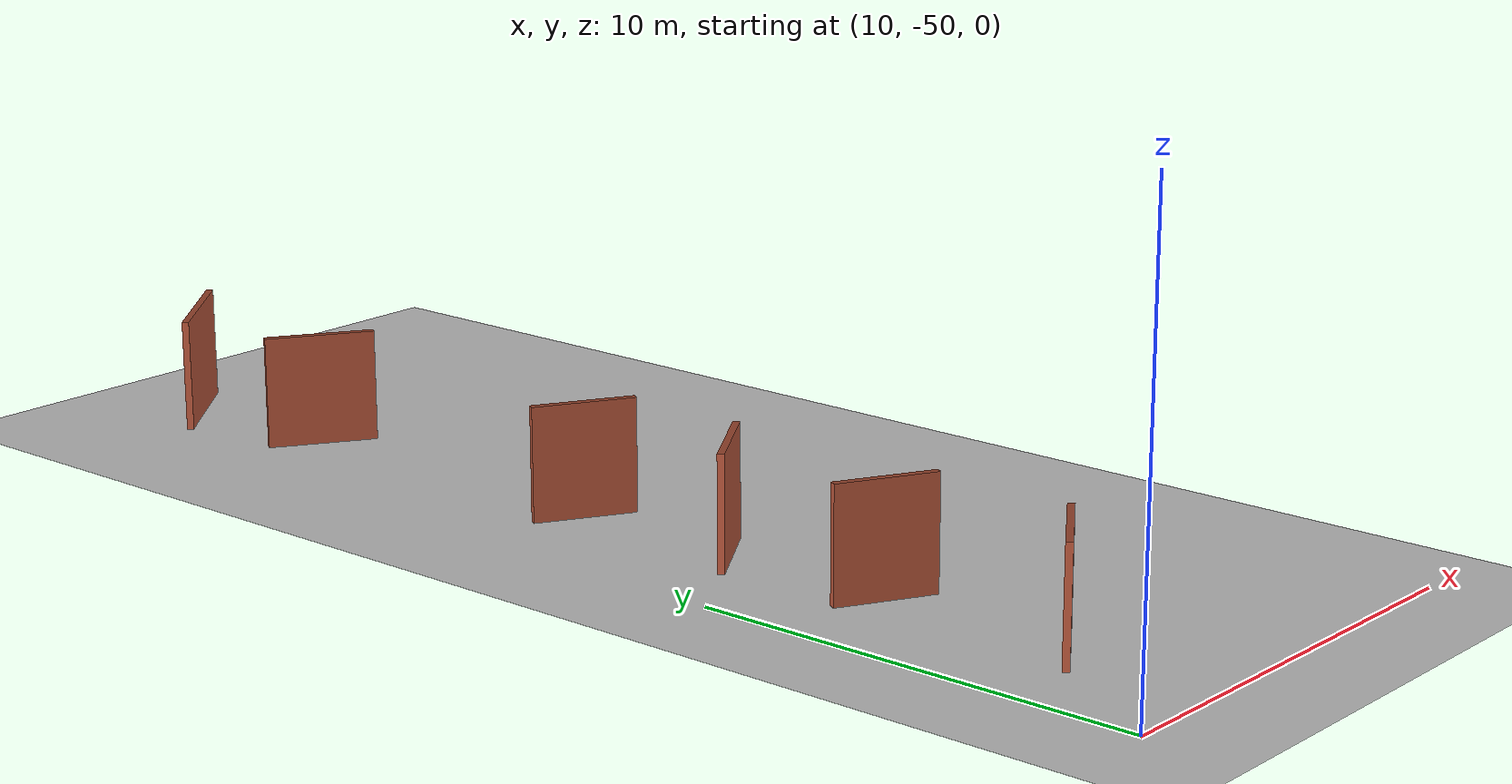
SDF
<sdf version="1.6">
 <world name="default">
  <model name="maze_rect_3">
   <pose>4e-06 -9.9e-05 0 0 -0 1.57001</pose>
   <link name="Wall_529">
    <collision name="Wall_529_Collision">
     <geometry><box><size>2.94143 0.15 2.5</size></box></geometry>
     <pose>0 0 1.25 0 -0 0</pose>
    </collision>
    <visual name="Wall_529_Visual">
     <pose>0 0 1.25 0 -0 0</pose>
     <geometry><box><size>2.94143 0.15 2.5</size></box></geometry>
     <material>
      <script><uri>file://media/materials/scripts/gazebo.material</uri><name>Gazebo/Bricks</name></script>
      <ambient>1 1 1 1</ambient>
     </material>
     <meta><layer>0</layer></meta>
    </visual>
    <pose>-22.3992 -12.4329 0 0 -0 -0.889562</pose>
   </link>
   <link name="Wall_532">
    <collision name="Wall_532_Collision">
     <geometry><box><size>2.43112 0.15 2.5</size></box></geometry>
     <pose>0 0 1.25 0 -0 0</pose>
    </collision>
    <visual name="Wall_532_Visual">
     <pose>0 0 1.25 0 -0 0</pose>
     <geometry><box><size>2.43112 0.15 2.5</size></box></geometry>
     <material>
      <script><uri>file://media/materials/scripts/gazebo.material</uri><name>Gazebo/Bricks</name></script>
      <ambient>1 1 1 1</ambient>
     </material>
     <meta><layer>0</layer></meta>
    </visual>
    <pose>-26.359 -12.5621 0 0 -0 0.998734</pose>
   </link>
   <link name="Wall_552">
    <collision name="Wall_552_Collision">
     <geometry><box><size>2.25 0.15 2.5</size></box></geometry>
     <pose>0 0 1.25 0 -0 0</pose>
    </collision>
    <visual name="Wall_552_Visual">
     <pose>0 0 1.25 0 -0 0</pose>
     <geometry><box><size>2.25 0.15 2.5</size></box></geometry>
     <material>
      <script><uri>file://media/materials/scripts/gazebo.material</uri><name>Gazebo/Bricks</name></script>
      <ambient>1 1 1 1</ambient>
     </material>
     <meta><layer>0</layer></meta>
    </visual>
    <pose>-34.4368 -12.5267 0 0 -0 -2.0944</pose>
   </link>
   <link name="Wall_565">
    <collision name="Wall_565_Collision">
     <geometry><box><size>2.23307 0.15 2.5</size></box></geometry>
     <pose>0 0 1.25 0 -0 0</pose>
    </collision>
    <visual name="Wall_565_Visual">
     <pose>0 0 1.25 0 -0 0</pose>
     <geometry><box><size>2.23307 0.15 2.5</size></box></geometry>
     <material>
      <script><uri>file://media/materials/scripts/gazebo.material</uri><name>Gazebo/Bricks</name></script>
      <ambient>1 1 1 1</ambient>
     </material>
     <meta><layer>0</layer></meta>
    </visual>
    <pose>-38.3753 -12.5601 0 0 -0 -0.999112</pose>
   </link>
   <link name="Wall_585">
    <collision name="Wall_585_Collision">
     <geometry><box><size>2.21874 0.15 2.5</size></box></geometry>
     <pose>0 0 1.25 0 -0 0</pose>
    </collision>
    <visual name="Wall_585_Visual">
     <pose>0 0 1.25 0 -0 0</pose>
     <geometry><box><size>2.21874 0.15 2.5</size></box></geometry>
     <material>
      <script><uri>file://media/materials/scripts/gazebo.material</uri><name>Gazebo/Bricks</name></script>
      <ambient>1 1 1 1</ambient>
     </material>
     <meta><layer>0</layer></meta>
    </visual>
    <pose>-42.3367 -12.5799 0 0 -0 -2.0658</pose>
   </link>
   <link name="Wall_587">
    <collision name="Wall_587_Collision">
     <geometry><box><size>2.27296 0.15 2.5</size></box></geometry>
     <pose>0 0 1.25 0 -0 0</pose>
    </collision>
    <visual name="Wall_587_Visual">
     <pose>0 0 1.25 0 -0 0</pose>
     <geometry><box><size>2.27296 0.15 2.5</size></box></geometry>
     <material>
      <script><uri>file://media/materials/scripts/gazebo.material</uri><name>Gazebo/Bricks</name></script>
      <ambient>1 1 1 1</ambient>
     </material>
     <meta><layer>0</layer></meta>
    </visual>
    <pose>-46.5948 -12.6124 0 0 -0 2.17093</pose>
   </link>
   <static>1</static>
  </model>
  <model name="ground_plane">
   <static>1</static>
   <link name="link">
    <collision name="collision">
     <geometry><plane><normal>0 0 1</normal><size>100 100</size></plane></geometry>
     <surface>
      <contact><collide_bitmask>65535</collide_bitmask></contact>
      <friction><ode><mu>100</mu><mu2>50</mu2></ode></friction>
     </surface>
    </collision>
    <visual name="visual">
     <cast_shadows>0</cast_shadows>
     <geometry><plane><normal>0 0 1</normal><size>100 100</size></plane></geometry>
     <material>
      <script><uri>file://media/materials/scripts/gazebo.material</uri><name>Gazebo/Grey</name></script>
     </material>
    </visual>
   </link>
   <pose>9.31394 52.073 0 0 -0 0</pose>
  </model>
 </world>
</sdf>
